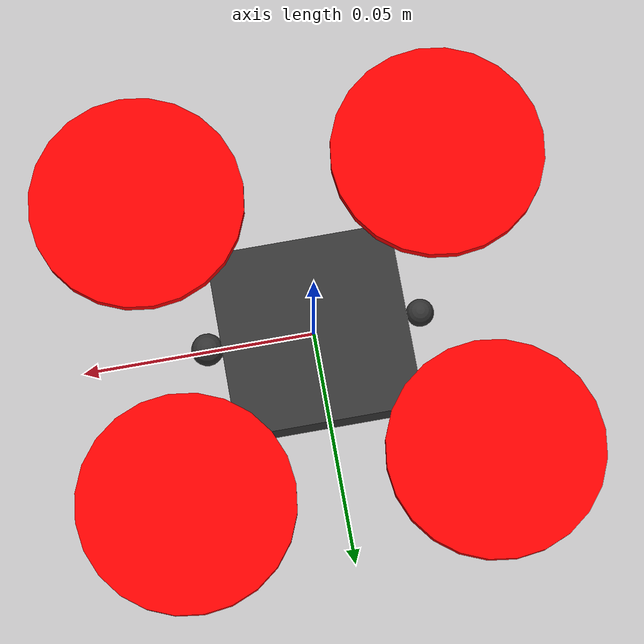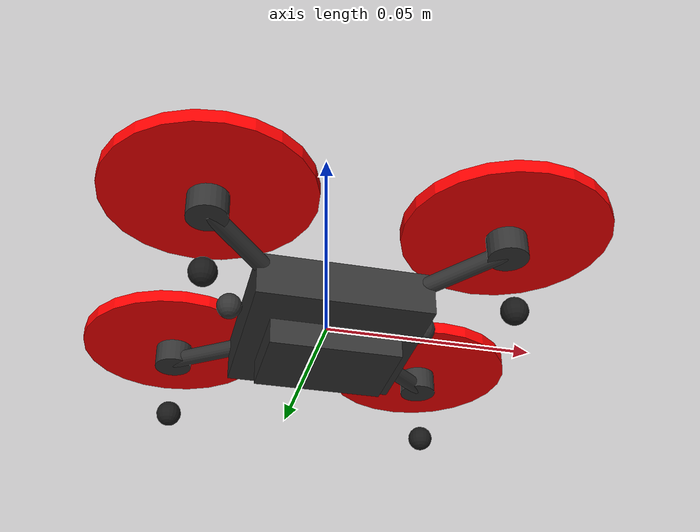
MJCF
<mujoco model="crazyflie_2x">
  <compiler angle="radian" coordinate="local" inertiafromgeom="false" balanceinertia="false"/>

  <default>
    <joint damping="0.001"/>
    <geom contype="1" conaffinity="1" density="0" rgba="0.2 0.2 0.2 1" solref="0.005 1" solimp="0.9 0.95 0.001"/>
    <site size="0.005" rgba="1 0 0 1"/>
  </default>

  <asset>
    <material name="chassis_mat" rgba="0.12 0.12 0.15 1.0" shininess="0.6" reflectance="0.2"/>
    <material name="battery_mat" rgba="0.25 0.28 0.32 1.0" shininess="0.3"/>
    <material name="arm_mat" rgba="0.18 0.20 0.22 1.0"/>
    <material name="prop_front" rgba="1.0 0.38 0.12 0.7"/>
    <material name="prop_rear" rgba="0.15 0.60 1.0 0.7"/>
    <material name="led_front" rgba="0.0 1.0 0.75 1.0"/>
    <material name="led_rear" rgba="1.0 0.15 0.25 1.0"/>
    <material name="motor_metal" rgba="0.75 0.75 0.80 1.0" shininess="0.9"/>
  </asset>

  <worldbody>
    <!-- 6-DoF Floating Base Drone Body -->
    <body name="quadcopter" pos="0 0 0">
      <freejoint name="root"/>

      <inertial pos="0 0 0" mass="0.033" diaginertia="1.685e-5 1.685e-5 3.359e-5"/>

      <!-- Central Body Geometry -->
      <geom name="chassis" type="box" size="0.02 0.02 0.005" material="chassis_mat"/>
      <geom name="battery" type="box" size="0.015 0.01 0.005" pos="0 0 -0.006" material="battery_mat"/>

      <!-- Visual Direction Indicators (Green = Front/Heading, Red = Tail) -->
      <geom name="heading_led" type="sphere" pos="0.023 0 0.003" size="0.0035" material="led_front" contype="0" conaffinity="0"/>
      <geom name="tail_led" type="sphere" pos="-0.023 0 0.003" size="0.003" material="led_rear" contype="0" conaffinity="0"/>

      <!-- Arms (Visual only - collision disabled to optimize broadphase) -->
      <geom name="arm_fl" type="capsule" fromto="0 0 0 0.0325 0.0325 0.005" size="0.002" material="arm_mat" contype="0" conaffinity="0"/>
      <geom name="arm_fr" type="capsule" fromto="0 0 0 0.0325 -0.0325 0.005" size="0.002" material="arm_mat" contype="0" conaffinity="0"/>
      <geom name="arm_rr" type="capsule" fromto="0 0 0 -0.0325 -0.0325 0.005" size="0.002" material="arm_mat" contype="0" conaffinity="0"/>
      <geom name="arm_rl" type="capsule" fromto="0 0 0 -0.0325 0.0325 0.005" size="0.002" material="arm_mat" contype="0" conaffinity="0"/>

      <!-- Motor Cans (Visual only) -->
      <geom name="motor_can_fl" type="cylinder" pos="0.0325 0.0325 0.006" size="0.0045 0.003" material="motor_metal" contype="0" conaffinity="0"/>
      <geom name="motor_can_fr" type="cylinder" pos="0.0325 -0.0325 0.006" size="0.0045 0.003" material="motor_metal" contype="0" conaffinity="0"/>
      <geom name="motor_can_rr" type="cylinder" pos="-0.0325 -0.0325 0.006" size="0.0045 0.003" material="motor_metal" contype="0" conaffinity="0"/>
      <geom name="motor_can_rl" type="cylinder" pos="-0.0325 0.0325 0.006" size="0.0045 0.003" material="motor_metal" contype="0" conaffinity="0"/>

      <!-- Landing Pegs (Ground Contact Colliders) -->
      <geom name="leg_fl" type="sphere" pos="0.0325 0.0325 -0.01" size="0.003" rgba="0.1 0.1 0.1 1"/>
      <geom name="leg_fr" type="sphere" pos="0.0325 -0.0325 -0.01" size="0.003" rgba="0.1 0.1 0.1 1"/>
      <geom name="leg_rr" type="sphere" pos="-0.0325 -0.0325 -0.01" size="0.003" rgba="0.1 0.1 0.1 1"/>
      <geom name="leg_rl" type="sphere" pos="-0.0325 0.0325 -0.01" size="0.003" rgba="0.1 0.1 0.1 1"/>

      <!-- Rotor Application Sites (Translucent Prop Discs) -->
      <site name="rotor_fl" pos="0.0325 0.0325 0.01" size="0.023 0.0015" type="cylinder" material="prop_front"/>
      <site name="rotor_fr" pos="0.0325 -0.0325 0.01" size="0.023 0.0015" type="cylinder" material="prop_front"/>
      <site name="rotor_rr" pos="-0.0325 -0.0325 0.01" size="0.023 0.0015" type="cylinder" material="prop_rear"/>
      <site name="rotor_rl" pos="-0.0325 0.0325 0.01" size="0.023 0.0015" type="cylinder" material="prop_rear"/>

      <!-- Onboard IMU Sensor Site -->
      <site name="imu" pos="0 0 0" size="0.002"/>
    </body>
  </worldbody>

  <!-- Actuator Definitions: Rotor Thrust (N) and Reactive Drag Torque -->
  <actuator>
    <motor name="motor_fl" site="rotor_fl" gear="0 0 1 0 0 -0.0361" ctrlrange="0 0.20"/>
    <motor name="motor_fr" site="rotor_fr" gear="0 0 1 0 0 0.0361" ctrlrange="0 0.20"/>
    <motor name="motor_rr" site="rotor_rr" gear="0 0 1 0 0 -0.0361" ctrlrange="0 0.20"/>
    <motor name="motor_rl" site="rotor_rl" gear="0 0 1 0 0 0.0361" ctrlrange="0 0.20"/>
  </actuator>

  <!-- Built-in Realistic Sensors -->
  <sensor>
    <accelerometer name="accelerometer" site="imu"/>
    <gyro name="gyro" site="imu"/>
    <framequat name="orientation" objtype="site" objname="imu"/>
    <framelinvel name="linear_velocity" objtype="site" objname="imu"/>
    <framepos name="position" objtype="site" objname="imu"/>
  </sensor>
</mujoco>
